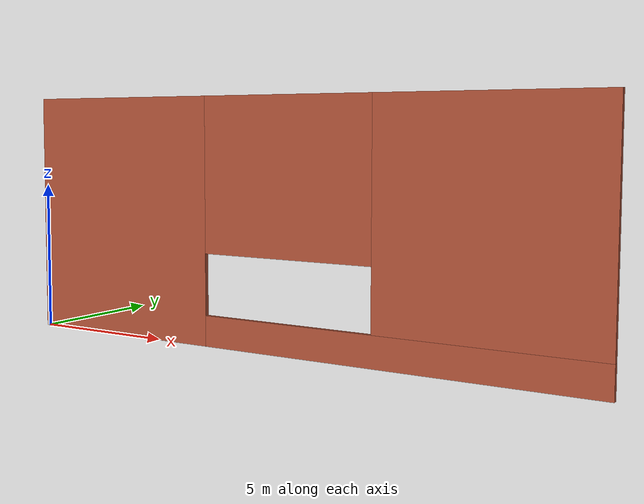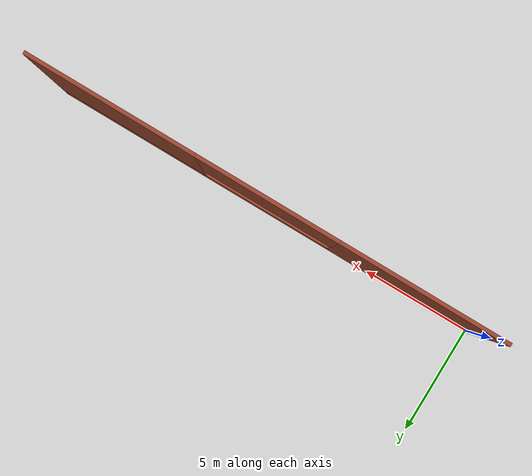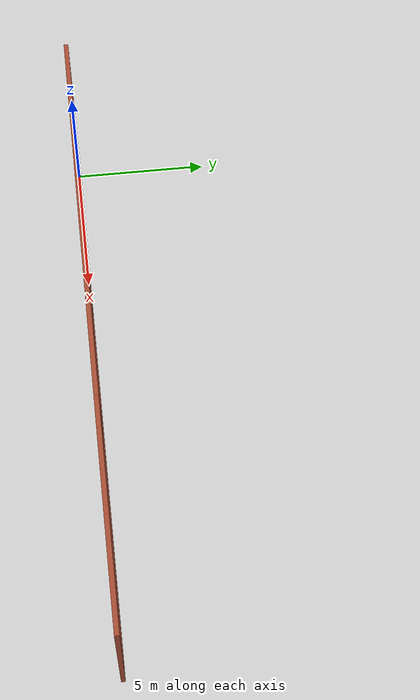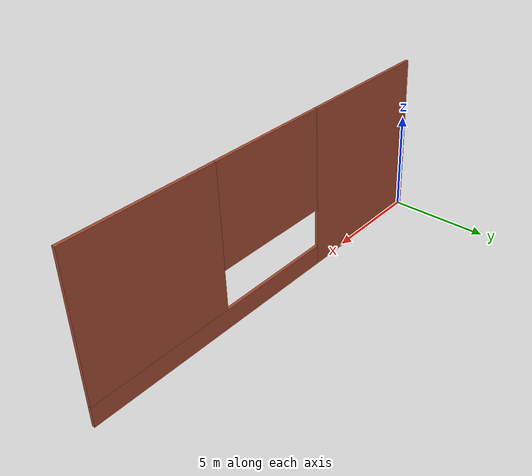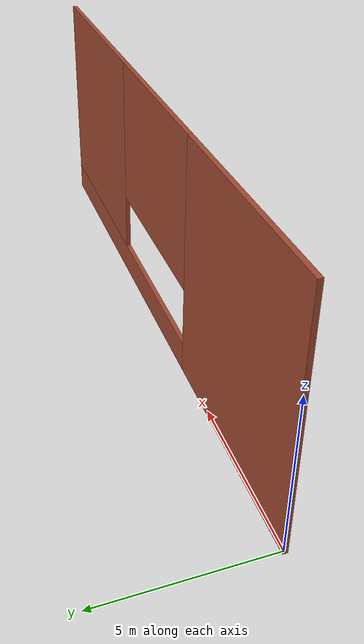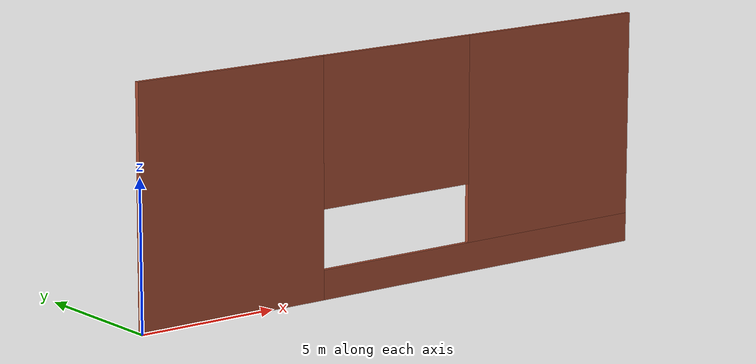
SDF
<?xml version='1.0'?>
<sdf version='1.7'>
  <model name='t_wall_4'>
    <pose>10 0 0 0 -0 0</pose>
    <link name='Wall_0'>
      <pose>-0 0 0 0 -0 0</pose>
      <visual name='Wall_0_Visual_0'>
        <pose>-6.5375 0 4 0 -0 0</pose>
        <geometry>
          <box>
            <size>7.075 0.15 8</size>
          </box>
        </geometry>
        <material>
          <script>
            <uri>model://t_wall_4/scripts</uri>
            <name>Bricks2</name>
          </script>
          <ambient>1 1 1 1</ambient>
        </material>
        <meta>
          <layer>0</layer>
        </meta>
      </visual>
      <collision name='Wall_0_Collision_0'>
        <geometry>
          <box>
            <size>7.075 0.15 8</size>
          </box>
        </geometry>
        <pose>-6.5375 0 4 0 -0 0</pose>
      </collision>
      <visual name='Wall_0_Visual_1'>
        <pose>3.5375 0 0.5 0 -0 0</pose>
        <geometry>
          <box>
            <size>13.075 0.15 1</size>
          </box>
        </geometry>
        <material>
          <script>
            <uri>model://t_wall_4/scripts</uri>
            <name>Bricks2_2</name>
          </script>
          <ambient>1 1 1 1</ambient>
        </material>
        <meta>
          <layer>0</layer>
        </meta>
      </visual>
      <collision name='Wall_0_Collision_1'>
        <geometry>
          <box>
            <size>13.075 0.15 1</size>
          </box>
        </geometry>
        <pose>3.5375 0 0.5 0 -0 0</pose>
      </collision>
      <visual name='Wall_0_Visual_2'>
        <pose>6.5375 0 4.5 0 -0 0</pose>
        <geometry>
          <box>
            <size>7.075 0.15 7</size>
          </box>
        </geometry>
        <material>
          <script>
            <uri>model://t_wall_4/scripts</uri>
            <name>Bricks2_3</name>
          </script>
          <ambient>1 1 1 1</ambient>
        </material>
        <meta>
          <layer>0</layer>
        </meta>
      </visual>
      <collision name='Wall_0_Collision_2'>
        <geometry>
          <box>
            <size>7.075 0.15 7</size>
          </box>
        </geometry>
        <pose>6.5375 0 4.5 0 -0 0</pose>
      </collision>
      <visual name='Wall_0_Visual_3'>
        <pose>0 0 5.5 0 -0 0</pose>
        <geometry>
          <box>
            <size>6 0.15 5</size>
          </box>
        </geometry>
        <material>
          <script>
            <uri>model://t_wall_4/scripts</uri>
            <name>Bricks2_4</name>
          </script>
          <ambient>1 1 1 1</ambient>
        </material>
        <meta>
          <layer>0</layer>
        </meta>
      </visual>
      <collision name='Wall_0_Collision_3'>
        <geometry>
          <box>
            <size>6 0.15 5</size>
          </box>
        </geometry>
        <pose>0 0 5.5 0 -0 0</pose>
      </collision>
    </link>
    <static>1</static>
  </model>
</sdf>
